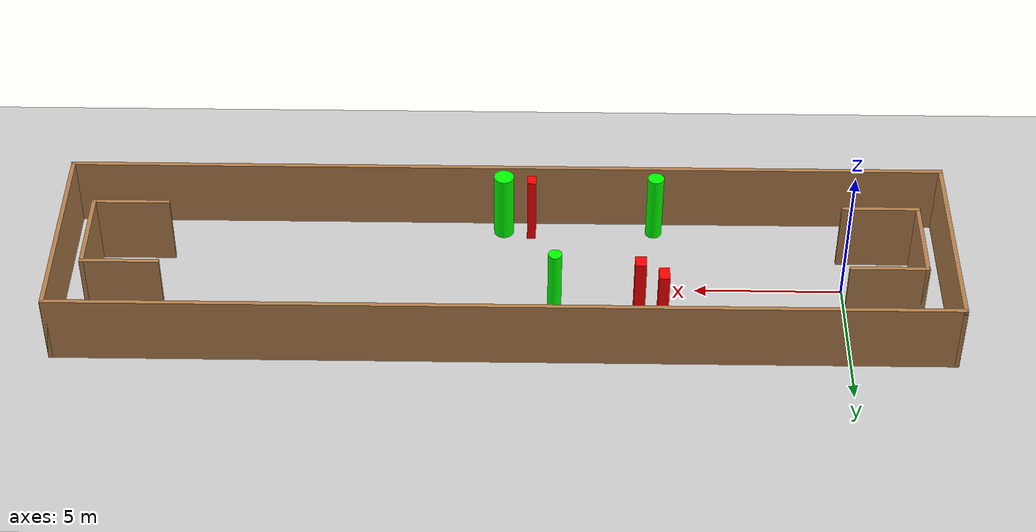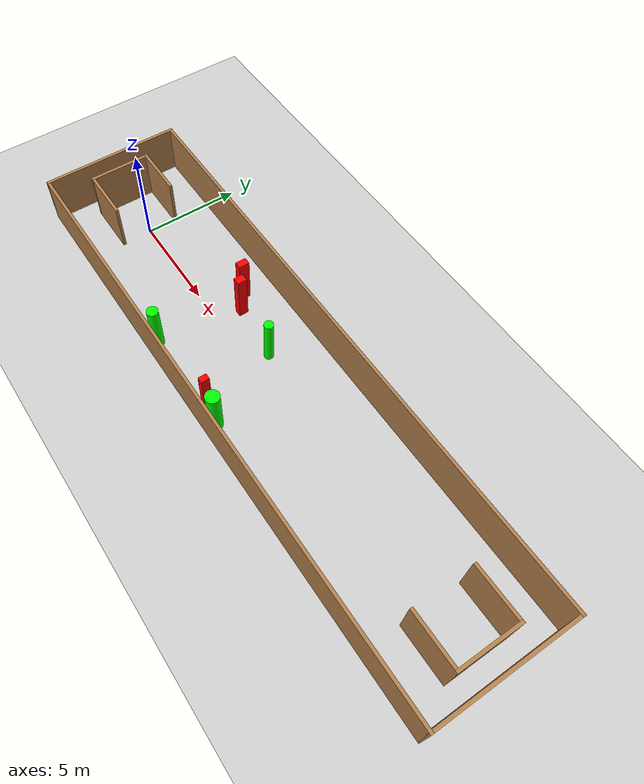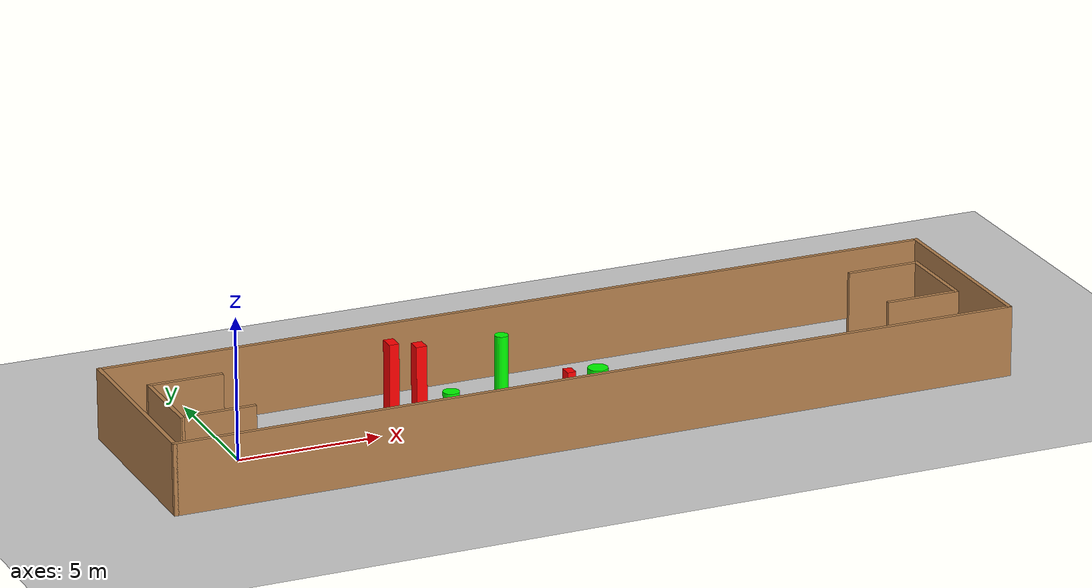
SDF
<sdf version="1.7">
 <world name="default">
  <light name="sun" type="directional">
   <pose>0 0 10 0 -0 0</pose>
   <diffuse>0.8 0.8 0.8 1</diffuse>
   <specular>0.2 0.2 0.2 1</specular>
   <attenuation>
    <range>1000</range>
    <constant>0.9</constant>
    <linear>0.01</linear>
    <quadratic>0.001</quadratic>
   </attenuation>
   <direction>-0.5 0.1 -0.9</direction>
   <spot><inner_angle>0</inner_angle><outer_angle>0</outer_angle><falloff>0</falloff></spot>
  </light>
  <model name="ground_plane">
   <static>1</static>
   <link name="link">
    <collision name="collision">
     <geometry><plane><normal>0 0 1</normal><size>100 100</size></plane></geometry>
     <surface>
      <contact><collide_bitmask>65535</collide_bitmask></contact>
      <friction><ode><mu>100</mu><mu2>50</mu2></ode></friction>
     </surface>
    </collision>
    <visual name="visual">
     <cast_shadows>0</cast_shadows>
     <geometry><plane><normal>0 0 1</normal><size>100 100</size></plane></geometry>
     <material>
      <script><uri>file://media/materials/scripts/gazebo.material</uri><name>Gazebo/Grey</name></script>
     </material>
    </visual>
   </link>
  </model>
  <gravity>0 0 -9.8</gravity>
  <magnetic_field>6e-06 2.3e-05 -4.2e-05</magnetic_field>
  <atmosphere type="adiabatic"/>
  <physics type="ode">
   <max_step_size>0.001</max_step_size>
   <real_time_factor>1</real_time_factor>
   <real_time_update_rate>1000</real_time_update_rate>
  </physics>
  <scene><ambient>0.4 0.4 0.4 1</ambient><background>0.7 0.7 0.7 1</background><shadows>1</shadows></scene>
  <spherical_coordinates>
   <surface_model>EARTH_WGS84</surface_model>
   <latitude_deg>0</latitude_deg>
   <longitude_deg>0</longitude_deg>
   <elevation>0</elevation>
   <heading_deg>0</heading_deg>
  </spherical_coordinates>
  <model name="my_base_walls">
   <link name="Wall_0">
    <collision name="Wall_0_Collision">
     <geometry><box><size>7.15 0.15 2.5</size></box></geometry>
     <pose>0 0 1.25 0 -0 0</pose>
    </collision>
    <visual name="Wall_0_Visual">
     <pose>0 0 1.25 0 -0 0</pose>
     <geometry><box><size>7.15 0.15 2.5</size></box></geometry>
     <material>
      <script><uri>file://media/materials/scripts/gazebo.material</uri><name>Gazebo/Wood</name></script>
      <ambient>1 1 1 1</ambient>
     </material>
     <meta><layer>0</layer></meta>
    </visual>
    <pose>-15 0 0 0 -0 1.5708</pose>
   </link>
   <link name="Wall_10">
    <collision name="Wall_10_Collision">
     <geometry><box><size>2.65 0.15 2.5</size></box></geometry>
     <pose>0 0 1.25 0 -0 0</pose>
    </collision>
    <visual name="Wall_10_Visual">
     <pose>0 0 1.25 0 -0 0</pose>
     <geometry><box><size>2.65 0.15 2.5</size></box></geometry>
     <material>
      <script><uri>file://media/materials/scripts/gazebo.material</uri><name>Gazebo/Wood</name></script>
      <ambient>1 1 1 1</ambient>
     </material>
     <meta><layer>0</layer></meta>
    </visual>
    <pose>-12.75 -1.5 0 0 -0 0</pose>
   </link>
   <link name="Wall_12">
    <collision name="Wall_12_Collision">
     <geometry><box><size>2.65 0.15 2.5</size></box></geometry>
     <pose>0 0 1.25 0 -0 0</pose>
    </collision>
    <visual name="Wall_12_Visual">
     <pose>0 0 1.25 0 -0 0</pose>
     <geometry><box><size>2.65 0.15 2.5</size></box></geometry>
     <material>
      <script><uri>file://media/materials/scripts/gazebo.material</uri><name>Gazebo/Wood</name></script>
      <ambient>1 1 1 1</ambient>
     </material>
     <meta><layer>0</layer></meta>
    </visual>
    <pose>-12.75 1.5 0 0 -0 0</pose>
   </link>
   <link name="Wall_14">
    <collision name="Wall_14_Collision">
     <geometry><box><size>3.15 0.15 2.5</size></box></geometry>
     <pose>0 0 1.25 0 -0 0</pose>
    </collision>
    <visual name="Wall_14_Visual">
     <pose>0 0 1.25 0 -0 0</pose>
     <geometry><box><size>3.15 0.15 2.5</size></box></geometry>
     <material>
      <script><uri>file://media/materials/scripts/gazebo.material</uri><name>Gazebo/Wood</name></script>
      <ambient>1 1 1 1</ambient>
     </material>
     <meta><layer>0</layer></meta>
    </visual>
    <pose>14 0 0 0 -0 -1.5708</pose>
   </link>
   <link name="Wall_15">
    <collision name="Wall_15_Collision">
     <geometry><box><size>2.65 0.15 2.5</size></box></geometry>
     <pose>0 0 1.25 0 -0 0</pose>
    </collision>
    <visual name="Wall_15_Visual">
     <pose>0 0 1.25 0 -0 0</pose>
     <geometry><box><size>2.65 0.15 2.5</size></box></geometry>
     <material>
      <script><uri>file://media/materials/scripts/gazebo.material</uri><name>Gazebo/Wood</name></script>
      <ambient>1 1 1 1</ambient>
     </material>
     <meta><layer>0</layer></meta>
    </visual>
    <pose>12.75 -1.5 0 0 -0 3.14159</pose>
   </link>
   <link name="Wall_17">
    <collision name="Wall_17_Collision">
     <geometry><box><size>2.65 0.15 2.5</size></box></geometry>
     <pose>0 0 1.25 0 -0 0</pose>
    </collision>
    <visual name="Wall_17_Visual">
     <pose>0 0 1.25 0 -0 0</pose>
     <geometry><box><size>2.65 0.15 2.5</size></box></geometry>
     <material>
      <script><uri>file://media/materials/scripts/gazebo.material</uri><name>Gazebo/Wood</name></script>
      <ambient>1 1 1 1</ambient>
     </material>
     <meta><layer>0</layer></meta>
    </visual>
    <pose>12.75 1.5 0 0 -0 3.14159</pose>
   </link>
   <link name="Wall_2">
    <collision name="Wall_2_Collision">
     <geometry><box><size>30.15 0.15 2.5</size></box></geometry>
     <pose>0 0 1.25 0 -0 0</pose>
    </collision>
    <visual name="Wall_2_Visual">
     <pose>0 0 1.25 0 -0 0</pose>
     <geometry><box><size>30.15 0.15 2.5</size></box></geometry>
     <material>
      <script><uri>file://media/materials/scripts/gazebo.material</uri><name>Gazebo/Wood</name></script>
      <ambient>1 1 1 1</ambient>
     </material>
     <meta><layer>0</layer></meta>
    </visual>
    <pose>-0 -3.5 0 0 -0 0</pose>
   </link>
   <link name="Wall_4">
    <collision name="Wall_4_Collision">
     <geometry><box><size>30.15 0.15 2.5</size></box></geometry>
     <pose>0 0 1.25 0 -0 0</pose>
    </collision>
    <visual name="Wall_4_Visual">
     <pose>0 0 1.25 0 -0 0</pose>
     <geometry><box><size>30.15 0.15 2.5</size></box></geometry>
     <material>
      <script><uri>file://media/materials/scripts/gazebo.material</uri><name>Gazebo/Wood</name></script>
      <ambient>1 1 1 1</ambient>
     </material>
     <meta><layer>0</layer></meta>
    </visual>
    <pose>-0 3.5 0 0 -0 0</pose>
   </link>
   <link name="Wall_6">
    <collision name="Wall_6_Collision">
     <geometry><box><size>7.15 0.15 2.5</size></box></geometry>
     <pose>0 0 1.25 0 -0 0</pose>
    </collision>
    <visual name="Wall_6_Visual">
     <pose>0 0 1.25 0 -0 0</pose>
     <geometry><box><size>7.15 0.15 2.5</size></box></geometry>
     <material>
      <script><uri>file://media/materials/scripts/gazebo.material</uri><name>Gazebo/Wood</name></script>
      <ambient>1 1 1 1</ambient>
     </material>
     <meta><layer>0</layer></meta>
    </visual>
    <pose>15 0 0 0 -0 -1.5708</pose>
   </link>
   <link name="Wall_9">
    <collision name="Wall_9_Collision">
     <geometry><box><size>3.15 0.15 2.5</size></box></geometry>
     <pose>0 0 1.25 0 -0 0</pose>
    </collision>
    <visual name="Wall_9_Visual">
     <pose>0 0 1.25 0 -0 0</pose>
     <geometry><box><size>3.15 0.15 2.5</size></box></geometry>
     <material>
      <script><uri>file://media/materials/scripts/gazebo.material</uri><name>Gazebo/Wood</name></script>
      <ambient>1 1 1 1</ambient>
     </material>
     <meta><layer>0</layer></meta>
    </visual>
    <pose>-14 0 0 0 -0 -1.5708</pose>
   </link>
   <static>1</static>
   <pose>11.5 0 0 0 -0 0</pose>
  </model>
  <model name="cylinder1">
   <static>1</static>
   <link name="link">
    <inertial>
     <mass>1</mass>
     <inertia><ixx>0.5</ixx><ixy>0</ixy><ixz>0</ixz><iyy>0.5</iyy><iyz>0</iyz><izz>1</izz></inertia>
    </inertial>
    <collision name="collision">
     <geometry><cylinder><radius>0.3442013357474205</radius><length>2.5</length></cylinder></geometry>
    </collision>
    <visual name="visual">
     <geometry><cylinder><radius>0.3442013357474205</radius><length>2.5</length></cylinder></geometry>
     <material>
      <ambient>0 1 0 1</ambient>
      <diffuse>0 1 0 1</diffuse>
      <specular>0.1 0.1 0.1 1</specular>
      <emissive>0 0 0 0</emissive>
     </material>
    </visual>
   </link>
   <pose>11.55635422331723 -2.9829714339997215 1.25 0 0 0</pose>
  </model>
  <model name="cylinder2">
   <static>1</static>
   <link name="link">
    <inertial>
     <mass>1</mass>
     <inertia><ixx>0.5</ixx><ixy>0</ixy><ixz>0</ixz><iyy>0.5</iyy><iyz>0</iyz><izz>1</izz></inertia>
    </inertial>
    <collision name="collision">
     <geometry><cylinder><radius>0.28049549700912235</radius><length>2.5</length></cylinder></geometry>
    </collision>
    <visual name="visual">
     <geometry><cylinder><radius>0.28049549700912235</radius><length>2.5</length></cylinder></geometry>
     <material>
      <ambient>0 1 0 1</ambient>
      <diffuse>0 1 0 1</diffuse>
      <specular>0.1 0.1 0.1 1</specular>
      <emissive>0 0 0 0</emissive>
     </material>
    </visual>
   </link>
   <pose>6.321610680549988 -2.975977031940474 1.25 0 0 0</pose>
  </model>
  <model name="cylinder3">
   <static>1</static>
   <link name="link">
    <inertial>
     <mass>1</mass>
     <inertia><ixx>0.5</ixx><ixy>0</ixy><ixz>0</ixz><iyy>0.5</iyy><iyz>0</iyz><izz>1</izz></inertia>
    </inertial>
    <collision name="collision">
     <geometry><cylinder><radius>0.23275831267320324</radius><length>2.5</length></cylinder></geometry>
    </collision>
    <visual name="visual">
     <geometry><cylinder><radius>0.23275831267320324</radius><length>2.5</length></cylinder></geometry>
     <material>
      <ambient>0 1 0 1</ambient>
      <diffuse>0 1 0 1</diffuse>
      <specular>0.1 0.1 0.1 1</specular>
      <emissive>0 0 0 0</emissive>
     </material>
    </visual>
   </link>
   <pose>9.801945507623044 0.978208117721981 1.25 0 0 0</pose>
  </model>
  <model name="box1">
   <static>1</static>
   <link name="link">
    <inertial>
     <mass>1</mass>
     <inertia><ixx>0.083</ixx><ixy>0</ixy><ixz>0</ixz><iyy>0.083</iyy><iyz>0</iyz><izz>0.083</izz></inertia>
    </inertial>
    <collision name="collision">
     <geometry><box><size>0.3821738571410831 0.47163708080617694 2.5</size></box></geometry>
    </collision>
    <visual name="visual">
     <geometry><box><size>0.3821738571410831 0.47163708080617694 2.5</size></box></geometry>
     <material>
      <ambient>1 0 0 1</ambient>
      <diffuse>1 0 0 1</diffuse>
      <specular>0.1 0.1 0.1 1</specular>
      <emissive>0 0 0 0</emissive>
     </material>
    </visual>
    <sensor name="my_contact" type="contact">
     <contact><collision>box_collision</collision><topic>__default_topic__</topic></contact>
    </sensor>
   </link>
   <pose>6.954268476756454 1.2772808705022074 1.25 0 0 0</pose>
  </model>
  <model name="box2">
   <static>1</static>
   <link name="link">
    <inertial>
     <mass>1</mass>
     <inertia><ixx>0.083</ixx><ixy>0</ixy><ixz>0</ixz><iyy>0.083</iyy><iyz>0</iyz><izz>0.083</izz></inertia>
    </inertial>
    <collision name="collision">
     <geometry><box><size>0.35407289056386193 0.5363121004879794 2.5</size></box></geometry>
    </collision>
    <visual name="visual">
     <geometry><box><size>0.35407289056386193 0.5363121004879794 2.5</size></box></geometry>
     <material>
      <ambient>1 0 0 1</ambient>
      <diffuse>1 0 0 1</diffuse>
      <specular>0.1 0.1 0.1 1</specular>
      <emissive>0 0 0 0</emissive>
     </material>
    </visual>
    <sensor name="my_contact" type="contact">
     <contact><collision>box_collision</collision><topic>__default_topic__</topic></contact>
    </sensor>
   </link>
   <pose>6.196756342429357 1.8631424394282128 1.25 0 0 0</pose>
  </model>
  <model name="box3">
   <static>1</static>
   <link name="link">
    <inertial>
     <mass>1</mass>
     <inertia><ixx>0.083</ixx><ixy>0</ixy><ixz>0</ixz><iyy>0.083</iyy><iyz>0</iyz><izz>0.083</izz></inertia>
    </inertial>
    <collision name="collision">
     <geometry><box><size>0.3020276852022965 0.4046207882021425 2.5</size></box></geometry>
    </collision>
    <visual name="visual">
     <geometry><box><size>0.3020276852022965 0.4046207882021425 2.5</size></box></geometry>
     <material>
      <ambient>1 0 0 1</ambient>
      <diffuse>1 0 0 1</diffuse>
      <specular>0.1 0.1 0.1 1</specular>
      <emissive>0 0 0 0</emissive>
     </material>
    </visual>
    <sensor name="my_contact" type="contact">
     <contact><collision>box_collision</collision><topic>__default_topic__</topic></contact>
    </sensor>
   </link>
   <pose>10.59466824346195 -2.8294760711487643 1.25 0 0 0</pose>
  </model>
 </world>
</sdf>
